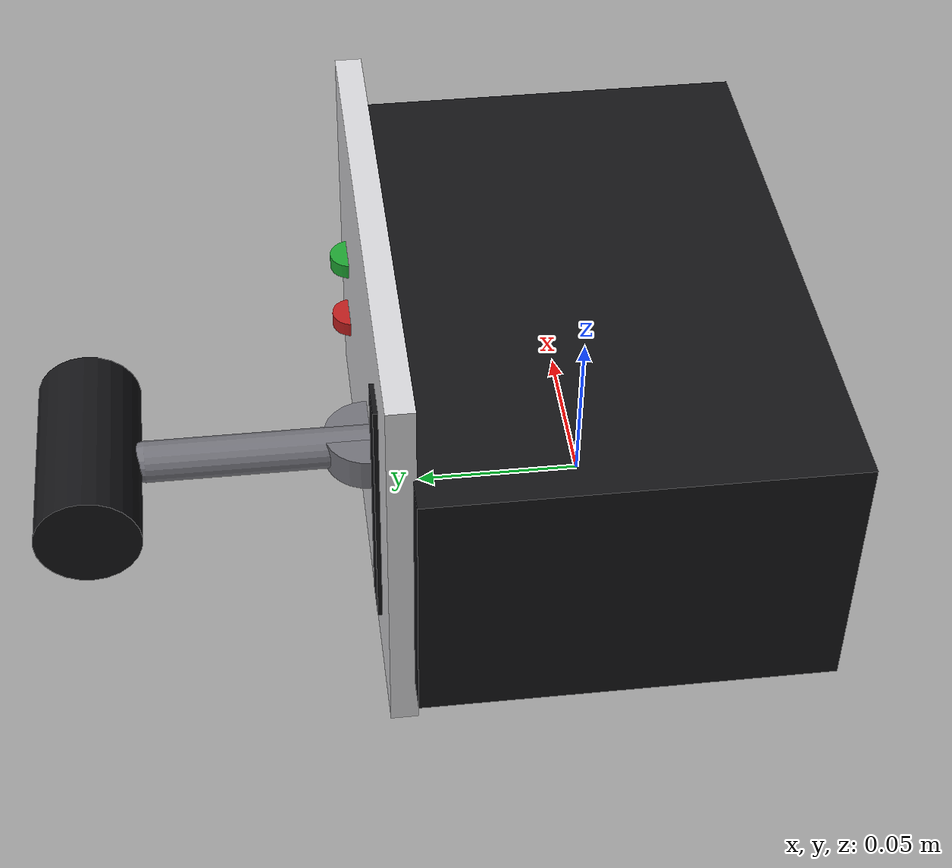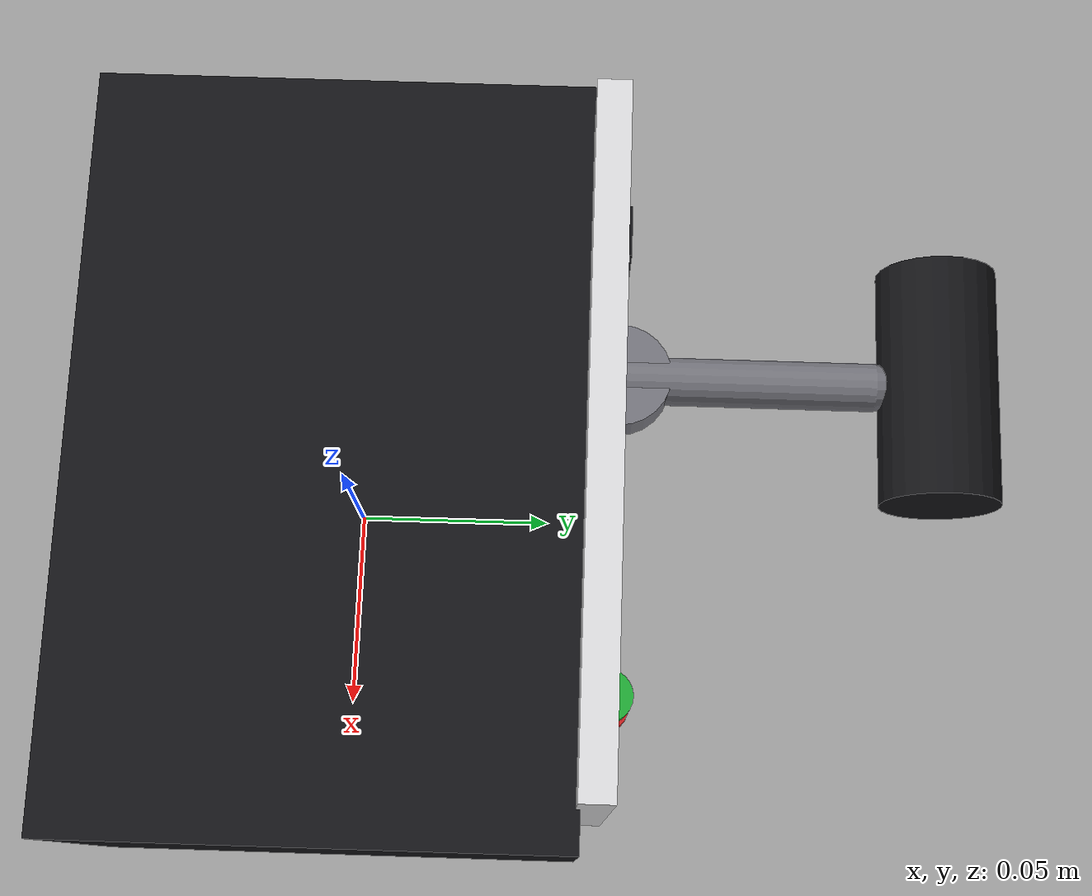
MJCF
<mujoco model="power_switch">
  <asset>
    <material name="MatPlasticDark"  rgba="0.08 0.08 0.09 1" specular="0.2" shininess="0.2"/>
    <material name="MatPlasticLight" rgba="0.85 0.85 0.86 1" specular="0.2" shininess="0.2"/>
    <material name="MatMetal"        rgba="0.45 0.45 0.48 1" specular="0.8" shininess="0.6"/>
    <material name="MatRed"          rgba="0.75 0.12 0.12 1" specular="0.3" shininess="0.2"/>
    <material name="MatGreen"        rgba="0.12 0.65 0.20 1" specular="0.3" shininess="0.2"/>
  </asset>

  <worldbody>
    <body>     <!-- do not remove this body -->
      <body name="object" pos="0 0 0">

        <!-- Mass scaled by 8× -->
        <inertial pos="0 0 0.04" mass="2.8"
                  diaginertia="0.0096 0.0096 0.012"/>
        <site name="origin" pos="0 0 0" size="0.01" rgba="0 0 0 0"/>

        <!-- ===================== Housing ===================== -->
        <geom name="housing_vis"
              type="box" pos="0 0 0.04" size="0.09 0.06 0.04"
              material="MatPlasticDark" group="1" contype="0" conaffinity="0"/>

        <geom name="panel_vis"
              type="box" pos="0 0.063 0.044" size="0.08 0.004 0.06"
              material="MatPlasticLight" group="1" contype="0" conaffinity="0"/>

        <geom name="slot_vis"
              type="box" pos="-0.052 0.066 0.044" size="0.006 0.0024 0.04"
              material="MatPlasticDark" group="1" contype="0" conaffinity="0"/>

        <geom name="indicator_green_vis"
              type="cylinder" pos="0.052 0.066 0.048" size="0.0064 0.0024"
              material="MatGreen" group="1" contype="0" conaffinity="0"/>
        <geom name="indicator_red_vis"
              type="cylinder" pos="0.052 0.066 0.024" size="0.0064 0.0024"
              material="MatRed" group="1" contype="0" conaffinity="0"/>

        <!-- ===================== Lever ===================== -->
        <body name="lever" pos="-0.028 0.0674 0.044">
          <joint name="lever_hinge"
                 type="hinge"
                 pos="0 0 0"
                 axis="1 0 0"
                 limited="true"
                 range="-1 1"
                 damping="1.0"
                 frictionloss="0.08"
                 armature="0.0012"
                 ref="-0.5"/>

          <inertial pos="0 0 0.02" mass="0.1"
                    diaginertia="0.00016 0.00016 0.00024"/>

          <geom name="lever_base_vis"
                type="cylinder" pos="0 0 0" size="0.013 0.005"
                material="MatMetal" group="1" contype="0" conaffinity="0"/>

          <geom name="lever_handle_vis"
                type="capsule" pos="0 0.024 0" size="0.006 0.04"
                quat="0.70710678 0.70710678 0 0"
                material="MatMetal" group="1" contype="0" conaffinity="0"/>

          <geom name="lever_knob_vis"
                type="cylinder" pos="0 0.08 0" size="0.015 0.03"
                quat="0.5 0.5 0.5 0.5"
                material="MatPlasticDark" group="1" contype="0" conaffinity="0"/>

          <geom name="lever_col"
                type="capsule" pos="0 0.024 0" size="0.0072 0.04"
                quat="0.70710678 0.70710678 0 0"
                rgba="0 0 0 0" group="0"
                friction="0.9 0.02 0.0005"/>

          <geom name="lever_knob_col"
                type="cylinder" pos="0 0.08 0" size="0.015 0.03"
                quat="0.5 0.5 0.5 0.5"
                material="MatPlasticDark" group="1" contype="0" conaffinity="0"/>

          <site name="lever_tip_site" pos="0 0.052 0" size="0.008" rgba="0 0 0 0"/>
        </body>

        <body name="grasping_point" pos="-0.028 0.11 0.12"/>
        <site name="grasping_point" pos="-0.028 0.11 0.12" size="0.025" rgba="0 0 1 0" />

        <body name="sliding_point" pos="-0.028 0.11 0.06"/>
        <site name="sliding_point" pos="-0.028 0.11 0.06" size="0.025" rgba="0 1 0 0" />

        <body name="releasing_point" pos="-0.028 0.15 0.06"/>
        <site name="releasing_point" pos="-0.028 0.15 0.06" size="0.025" rgba="0 1 0 0" />

        <!-- Optional mount sites -->
        <site name="bottom_site" pos="0 0 0" size="0.01" rgba="0 0 0 0"/>
        <site name="top_site"    pos="0 0 0.11" size="0.01" rgba="0 0 0 0"/>

      </body>
    </body>
  </worldbody>
</mujoco>
